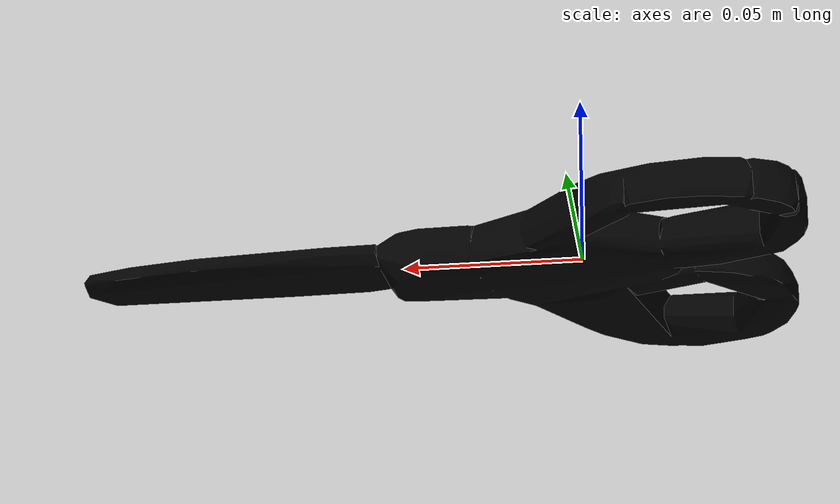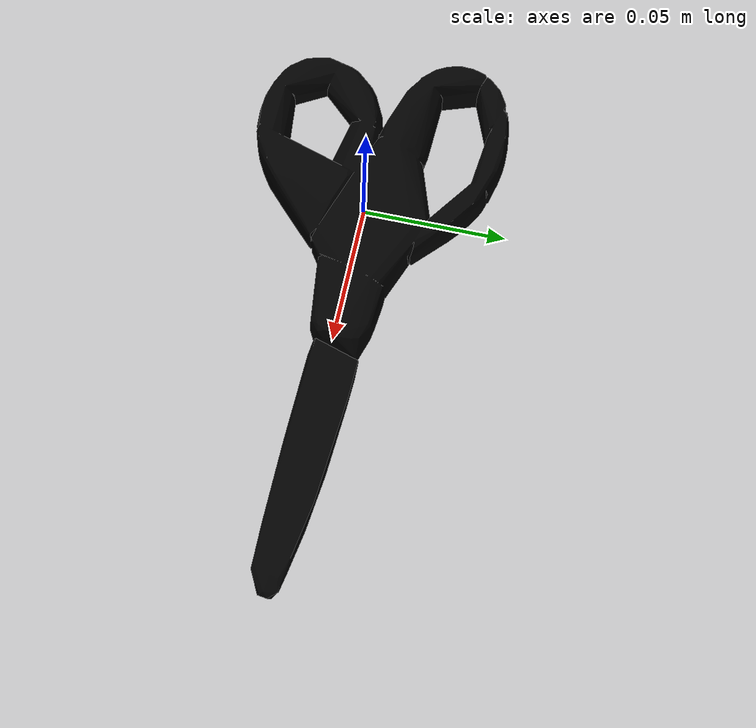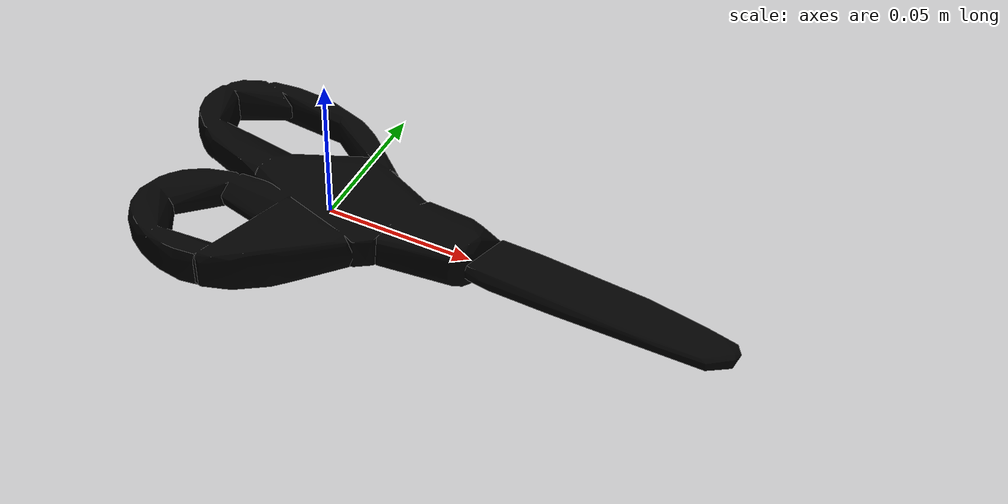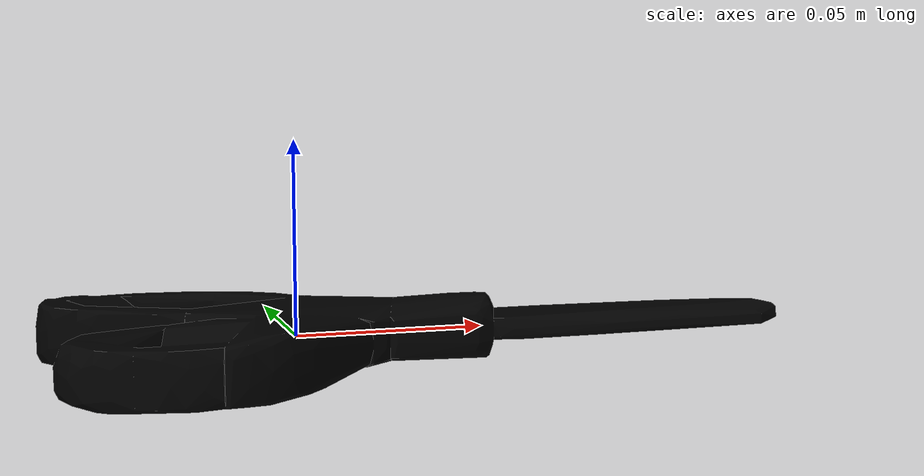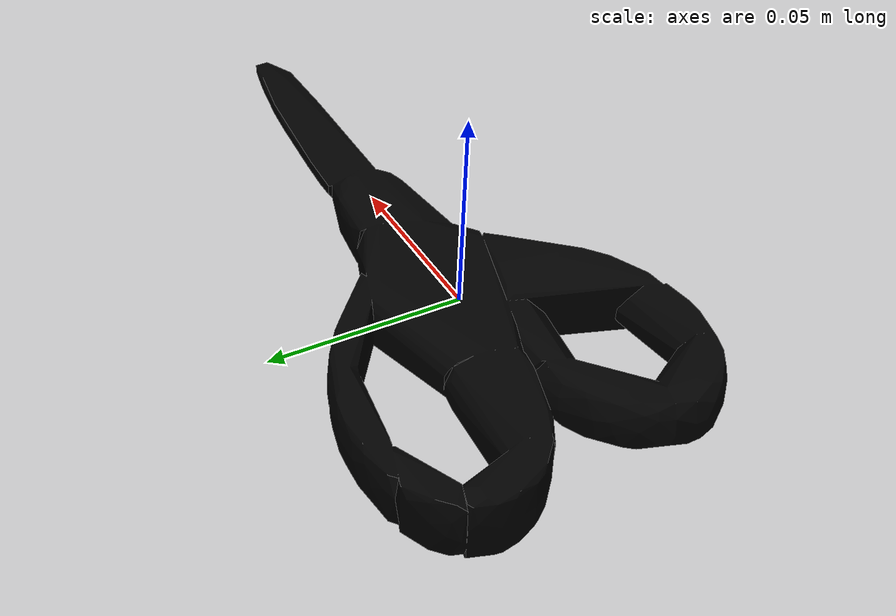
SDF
<?xml version="1.0"?>
<sdf version="1.4">
  <model name="037_scissors_textured">
    <pose>0 0 0  0 0 0</pose>
    <link name="body">
      <inertial>
        <mass> 1.0 </mass>
        <pose>0 0 0 0 0 0</pose>
        <inertia>
          <ixx>0.00036179867794567647</ixx>
          <ixy>0.0</ixy>
          <ixz>0.0</ixz>
          <iyy>0.0015175084525668886</iyy>
          <iyz>0.0</iyz>
          <izz>0.0018577214904674346</izz>
        </inertia>
      </inertial>
      <visual name="visual">
        <geometry>
          <mesh>
            <uri>model://037_scissors_textured/textured.dae</uri>
          </mesh>
        </geometry>
        <pose>-0.007504083285730012 -0.013006433709601696 0.00722501999921551 3.1398581232369702 -0.01162721591255646 1.26054192813619</pose>
      </visual>
      <collision name="collision">
        <geometry>
          <mesh>
            <uri>model://037_scissors_textured/textured.col.dae</uri>
          </mesh>
        </geometry>
        <max_contacts>10</max_contacts>
        <surface>
          <friction>
            <ode>
              <mu>0.8</mu>
              <mu2>0.8</mu2>
              <slip1>0</slip1>
              <slip2>0</slip2>
            </ode>
            <torsional>
              <ode/>
            </torsional>
          </friction>
          <contact>
            <ode>
              <kp>1000000.0</kp>
              <kd>1.0</kd>
              <max_vel>0.0</max_vel>
            </ode>
          </contact>
        </surface>
        <pose>-0.007504083285730012 -0.013006433709601696 0.00722501999921551 3.1398581232369702 -0.01162721591255646 1.26054192813619</pose>
      </collision>
    </link>
  </model>
</sdf>
